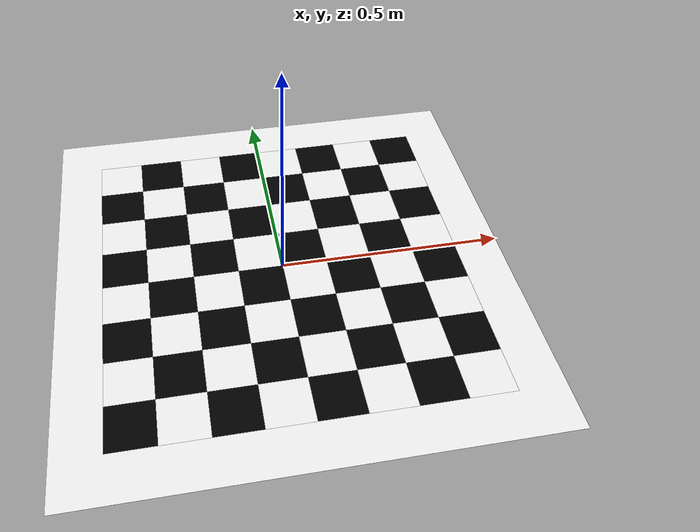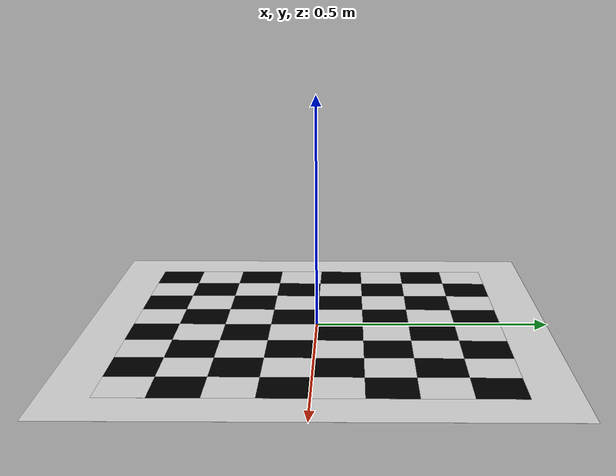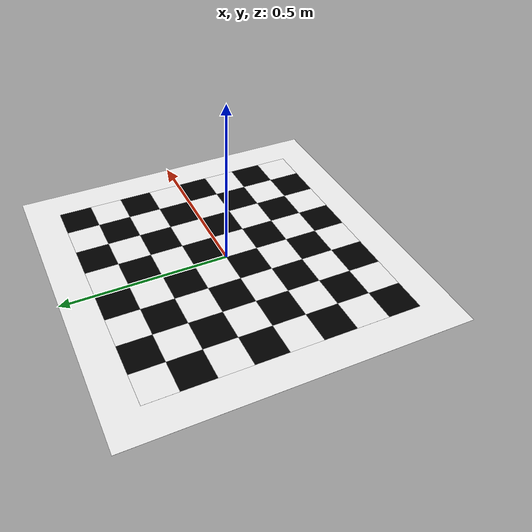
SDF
<?xml version="1.0"?>
<sdf version="1.4">
  <model name="checkerboard_8_8_0_1">
  <static>true</static>
  <link name="checkerboard_8_8_0_1_body">
  <collision name="board_collision">
    <pose>0 0 -0.005 0 0 0</pose>
    <geometry>
      <box>
        <size>1.0 1.0 0.01</size>
      </box>
    </geometry>
  </collision>
      <visual name="checker_0_0">
        <pose>-0.35000000000000003 -0.35000000000000003 0 0 0 0</pose>
        <geometry>
          <box>
            <size>0.1 0.1 0.0002</size>
          </box>
        </geometry>
        <material>
          <ambient>0 0 0 1</ambient>
          <diffuse>0 0 0 1</diffuse>
          <specular>0 0 0 1</specular>
          <emissive>0 0 0 1</emissive>
        </material>
      </visual>
      <visual name="checker_0_1">
        <pose>-0.35000000000000003 -0.25 0 0 0 0</pose>
        <geometry>
          <box>
            <size>0.1 0.1 0.0002</size>
          </box>
        </geometry>
        <material>
          <ambient>1 1 1 1</ambient>
          <diffuse>1 1 1 1</diffuse>
          <specular>1 1 1 1</specular>
          <emissive>1 1 1 1</emissive>
        </material>
      </visual>
      <visual name="checker_0_2">
        <pose>-0.35000000000000003 -0.15000000000000002 0 0 0 0</pose>
        <geometry>
          <box>
            <size>0.1 0.1 0.0002</size>
          </box>
        </geometry>
        <material>
          <ambient>0 0 0 1</ambient>
          <diffuse>0 0 0 1</diffuse>
          <specular>0 0 0 1</specular>
          <emissive>0 0 0 1</emissive>
        </material>
      </visual>
      <visual name="checker_0_3">
        <pose>-0.35000000000000003 -0.04999999999999999 0 0 0 0</pose>
        <geometry>
          <box>
            <size>0.1 0.1 0.0002</size>
          </box>
        </geometry>
        <material>
          <ambient>1 1 1 1</ambient>
          <diffuse>1 1 1 1</diffuse>
          <specular>1 1 1 1</specular>
          <emissive>1 1 1 1</emissive>
        </material>
      </visual>
      <visual name="checker_0_4">
        <pose>-0.35000000000000003 0.04999999999999999 0 0 0 0</pose>
        <geometry>
          <box>
            <size>0.1 0.1 0.0002</size>
          </box>
        </geometry>
        <material>
          <ambient>0 0 0 1</ambient>
          <diffuse>0 0 0 1</diffuse>
          <specular>0 0 0 1</specular>
          <emissive>0 0 0 1</emissive>
        </material>
      </visual>
      <visual name="checker_0_5">
        <pose>-0.35000000000000003 0.15000000000000002 0 0 0 0</pose>
        <geometry>
          <box>
            <size>0.1 0.1 0.0002</size>
          </box>
        </geometry>
        <material>
          <ambient>1 1 1 1</ambient>
          <diffuse>1 1 1 1</diffuse>
          <specular>1 1 1 1</specular>
          <emissive>1 1 1 1</emissive>
        </material>
      </visual>
      <visual name="checker_0_6">
        <pose>-0.35000000000000003 0.2500000000000001 0 0 0 0</pose>
        <geometry>
          <box>
            <size>0.1 0.1 0.0002</size>
          </box>
        </geometry>
        <material>
          <ambient>0 0 0 1</ambient>
          <diffuse>0 0 0 1</diffuse>
          <specular>0 0 0 1</specular>
          <emissive>0 0 0 1</emissive>
        </material>
      </visual>
      <visual name="checker_0_7">
        <pose>-0.35000000000000003 0.3500000000000001 0 0 0 0</pose>
        <geometry>
          <box>
            <size>0.1 0.1 0.0002</size>
          </box>
        </geometry>
        <material>
          <ambient>1 1 1 1</ambient>
          <diffuse>1 1 1 1</diffuse>
          <specular>1 1 1 1</specular>
          <emissive>1 1 1 1</emissive>
        </material>
      </visual>
      <visual name="checker_1_0">
        <pose>-0.25 -0.35000000000000003 0 0 0 0</pose>
        <geometry>
          <box>
            <size>0.1 0.1 0.0002</size>
          </box>
        </geometry>
        <material>
          <ambient>1 1 1 1</ambient>
          <diffuse>1 1 1 1</diffuse>
          <specular>1 1 1 1</specular>
          <emissive>1 1 1 1</emissive>
        </material>
      </visual>
      <visual name="checker_1_1">
        <pose>-0.25 -0.25 0 0 0 0</pose>
        <geometry>
          <box>
            <size>0.1 0.1 0.0002</size>
          </box>
        </geometry>
        <material>
          <ambient>0 0 0 1</ambient>
          <diffuse>0 0 0 1</diffuse>
          <specular>0 0 0 1</specular>
          <emissive>0 0 0 1</emissive>
        </material>
      </visual>
      <visual name="checker_1_2">
        <pose>-0.25 -0.15000000000000002 0 0 0 0</pose>
        <geometry>
          <box>
            <size>0.1 0.1 0.0002</size>
          </box>
        </geometry>
        <material>
          <ambient>1 1 1 1</ambient>
          <diffuse>1 1 1 1</diffuse>
          <specular>1 1 1 1</specular>
          <emissive>1 1 1 1</emissive>
        </material>
      </visual>
      <visual name="checker_1_3">
        <pose>-0.25 -0.04999999999999999 0 0 0 0</pose>
        <geometry>
          <box>
            <size>0.1 0.1 0.0002</size>
          </box>
        </geometry>
        <material>
          <ambient>0 0 0 1</ambient>
          <diffuse>0 0 0 1</diffuse>
          <specular>0 0 0 1</specular>
          <emissive>0 0 0 1</emissive>
        </material>
      </visual>
      <visual name="checker_1_4">
        <pose>-0.25 0.04999999999999999 0 0 0 0</pose>
        <geometry>
          <box>
            <size>0.1 0.1 0.0002</size>
          </box>
        </geometry>
        <material>
          <ambient>1 1 1 1</ambient>
          <diffuse>1 1 1 1</diffuse>
          <specular>1 1 1 1</specular>
          <emissive>1 1 1 1</emissive>
        </material>
      </visual>
      <visual name="checker_1_5">
        <pose>-0.25 0.15000000000000002 0 0 0 0</pose>
        <geometry>
          <box>
            <size>0.1 0.1 0.0002</size>
          </box>
        </geometry>
        <material>
          <ambient>0 0 0 1</ambient>
          <diffuse>0 0 0 1</diffuse>
          <specular>0 0 0 1</specular>
          <emissive>0 0 0 1</emissive>
        </material>
      </visual>
      <visual name="checker_1_6">
        <pose>-0.25 0.2500000000000001 0 0 0 0</pose>
        <geometry>
          <box>
            <size>0.1 0.1 0.0002</size>
          </box>
        </geometry>
        <material>
          <ambient>1 1 1 1</ambient>
          <diffuse>1 1 1 1</diffuse>
          <specular>1 1 1 1</specular>
          <emissive>1 1 1 1</emissive>
        </material>
      </visual>
      <visual name="checker_1_7">
        <pose>-0.25 0.3500000000000001 0 0 0 0</pose>
        <geometry>
          <box>
            <size>0.1 0.1 0.0002</size>
          </box>
        </geometry>
        <material>
          <ambient>0 0 0 1</ambient>
          <diffuse>0 0 0 1</diffuse>
          <specular>0 0 0 1</specular>
          <emissive>0 0 0 1</emissive>
        </material>
      </visual>
      <visual name="checker_2_0">
        <pose>-0.15000000000000002 -0.35000000000000003 0 0 0 0</pose>
        <geometry>
          <box>
            <size>0.1 0.1 0.0002</size>
          </box>
        </geometry>
        <material>
          <ambient>0 0 0 1</ambient>
          <diffuse>0 0 0 1</diffuse>
          <specular>0 0 0 1</specular>
          <emissive>0 0 0 1</emissive>
        </material>
      </visual>
      <visual name="checker_2_1">
        <pose>-0.15000000000000002 -0.25 0 0 0 0</pose>
        <geometry>
          <box>
            <size>0.1 0.1 0.0002</size>
          </box>
        </geometry>
        <material>
          <ambient>1 1 1 1</ambient>
          <diffuse>1 1 1 1</diffuse>
          <specular>1 1 1 1</specular>
          <emissive>1 1 1 1</emissive>
        </material>
      </visual>
      <visual name="checker_2_2">
        <pose>-0.15000000000000002 -0.15000000000000002 0 0 0 0</pose>
        <geometry>
          <box>
            <size>0.1 0.1 0.0002</size>
          </box>
        </geometry>
        <material>
          <ambient>0 0 0 1</ambient>
          <diffuse>0 0 0 1</diffuse>
          <specular>0 0 0 1</specular>
          <emissive>0 0 0 1</emissive>
        </material>
      </visual>
      <visual name="checker_2_3">
        <pose>-0.15000000000000002 -0.04999999999999999 0 0 0 0</pose>
        <geometry>
          <box>
            <size>0.1 0.1 0.0002</size>
          </box>
        </geometry>
        <material>
          <ambient>1 1 1 1</ambient>
          <diffuse>1 1 1 1</diffuse>
          <specular>1 1 1 1</specular>
          <emissive>1 1 1 1</emissive>
        </material>
      </visual>
      <visual name="checker_2_4">
        <pose>-0.15000000000000002 0.04999999999999999 0 0 0 0</pose>
        <geometry>
          <box>
            <size>0.1 0.1 0.0002</size>
          </box>
        </geometry>
        <material>
          <ambient>0 0 0 1</ambient>
          <diffuse>0 0 0 1</diffuse>
          <specular>0 0 0 1</specular>
          <emissive>0 0 0 1</emissive>
        </material>
      </visual>
      <visual name="checker_2_5">
        <pose>-0.15000000000000002 0.15000000000000002 0 0 0 0</pose>
        <geometry>
          <box>
            <size>0.1 0.1 0.0002</size>
          </box>
        </geometry>
        <material>
          <ambient>1 1 1 1</ambient>
          <diffuse>1 1 1 1</diffuse>
          <specular>1 1 1 1</specular>
          <emissive>1 1 1 1</emissive>
        </material>
      </visual>
      <visual name="checker_2_6">
        <pose>-0.15000000000000002 0.2500000000000001 0 0 0 0</pose>
        <geometry>
          <box>
            <size>0.1 0.1 0.0002</size>
          </box>
        </geometry>
        <material>
          <ambient>0 0 0 1</ambient>
          <diffuse>0 0 0 1</diffuse>
          <specular>0 0 0 1</specular>
          <emissive>0 0 0 1</emissive>
        </material>
      </visual>
      <visual name="checker_2_7">
        <pose>-0.15000000000000002 0.3500000000000001 0 0 0 0</pose>
        <geometry>
          <box>
            <size>0.1 0.1 0.0002</size>
          </box>
        </geometry>
        <material>
          <ambient>1 1 1 1</ambient>
          <diffuse>1 1 1 1</diffuse>
          <specular>1 1 1 1</specular>
          <emissive>1 1 1 1</emissive>
        </material>
      </visual>
      <visual name="checker_3_0">
        <pose>-0.04999999999999999 -0.35000000000000003 0 0 0 0</pose>
        <geometry>
          <box>
            <size>0.1 0.1 0.0002</size>
          </box>
        </geometry>
        <material>
          <ambient>1 1 1 1</ambient>
          <diffuse>1 1 1 1</diffuse>
          <specular>1 1 1 1</specular>
          <emissive>1 1 1 1</emissive>
        </material>
      </visual>
      <visual name="checker_3_1">
        <pose>-0.04999999999999999 -0.25 0 0 0 0</pose>
        <geometry>
          <box>
            <size>0.1 0.1 0.0002</size>
          </box>
        </geometry>
        <material>
          <ambient>0 0 0 1</ambient>
          <diffuse>0 0 0 1</diffuse>
          <specular>0 0 0 1</specular>
          <emissive>0 0 0 1</emissive>
        </material>
      </visual>
      <visual name="checker_3_2">
        <pose>-0.04999999999999999 -0.15000000000000002 0 0 0 0</pose>
        <geometry>
          <box>
            <size>0.1 0.1 0.0002</size>
          </box>
        </geometry>
        <material>
          <ambient>1 1 1 1</ambient>
          <diffuse>1 1 1 1</diffuse>
          <specular>1 1 1 1</specular>
          <emissive>1 1 1 1</emissive>
        </material>
      </visual>
      <visual name="checker_3_3">
        <pose>-0.04999999999999999 -0.04999999999999999 0 0 0 0</pose>
        <geometry>
          <box>
            <size>0.1 0.1 0.0002</size>
          </box>
        </geometry>
        <material>
          <ambient>0 0 0 1</ambient>
          <diffuse>0 0 0 1</diffuse>
          <specular>0 0 0 1</specular>
          <emissive>0 0 0 1</emissive>
        </material>
      </visual>
      <visual name="checker_3_4">
        <pose>-0.04999999999999999 0.04999999999999999 0 0 0 0</pose>
        <geometry>
          <box>
            <size>0.1 0.1 0.0002</size>
          </box>
        </geometry>
        <material>
          <ambient>1 1 1 1</ambient>
          <diffuse>1 1 1 1</diffuse>
          <specular>1 1 1 1</specular>
          <emissive>1 1 1 1</emissive>
        </material>
      </visual>
      <visual name="checker_3_5">
        <pose>-0.04999999999999999 0.15000000000000002 0 0 0 0</pose>
        <geometry>
          <box>
            <size>0.1 0.1 0.0002</size>
          </box>
        </geometry>
        <material>
          <ambient>0 0 0 1</ambient>
          <diffuse>0 0 0 1</diffuse>
          <specular>0 0 0 1</specular>
          <emissive>0 0 0 1</emissive>
        </material>
      </visual>
      <visual name="checker_3_6">
        <pose>-0.04999999999999999 0.2500000000000001 0 0 0 0</pose>
        <geometry>
          <box>
            <size>0.1 0.1 0.0002</size>
          </box>
        </geometry>
        <material>
          <ambient>1 1 1 1</ambient>
          <diffuse>1 1 1 1</diffuse>
          <specular>1 1 1 1</specular>
          <emissive>1 1 1 1</emissive>
        </material>
      </visual>
      <visual name="checker_3_7">
        <pose>-0.04999999999999999 0.3500000000000001 0 0 0 0</pose>
        <geometry>
          <box>
            <size>0.1 0.1 0.0002</size>
          </box>
        </geometry>
        <material>
          <ambient>0 0 0 1</ambient>
          <diffuse>0 0 0 1</diffuse>
          <specular>0 0 0 1</specular>
          <emissive>0 0 0 1</emissive>
        </material>
      </visual>
      <visual name="checker_4_0">
        <pose>0.04999999999999999 -0.35000000000000003 0 0 0 0</pose>
        <geometry>
          <box>
            <size>0.1 0.1 0.0002</size>
          </box>
        </geometry>
        <material>
          <ambient>0 0 0 1</ambient>
          <diffuse>0 0 0 1</diffuse>
          <specular>0 0 0 1</specular>
          <emissive>0 0 0 1</emissive>
        </material>
      </visual>
      <visual name="checker_4_1">
        <pose>0.04999999999999999 -0.25 0 0 0 0</pose>
        <geometry>
          <box>
            <size>0.1 0.1 0.0002</size>
          </box>
        </geometry>
        <material>
          <ambient>1 1 1 1</ambient>
          <diffuse>1 1 1 1</diffuse>
          <specular>1 1 1 1</specular>
          <emissive>1 1 1 1</emissive>
        </material>
      </visual>
      <visual name="checker_4_2">
        <pose>0.04999999999999999 -0.15000000000000002 0 0 0 0</pose>
        <geometry>
          <box>
            <size>0.1 0.1 0.0002</size>
          </box>
        </geometry>
        <material>
          <ambient>0 0 0 1</ambient>
          <diffuse>0 0 0 1</diffuse>
          <specular>0 0 0 1</specular>
          <emissive>0 0 0 1</emissive>
        </material>
      </visual>
      <visual name="checker_4_3">
        <pose>0.04999999999999999 -0.04999999999999999 0 0 0 0</pose>
        <geometry>
          <box>
            <size>0.1 0.1 0.0002</size>
          </box>
        </geometry>
        <material>
          <ambient>1 1 1 1</ambient>
          <diffuse>1 1 1 1</diffuse>
          <specular>1 1 1 1</specular>
          <emissive>1 1 1 1</emissive>
        </material>
      </visual>
      <visual name="checker_4_4">
        <pose>0.04999999999999999 0.04999999999999999 0 0 0 0</pose>
        <geometry>
          <box>
            <size>0.1 0.1 0.0002</size>
          </box>
        </geometry>
        <material>
          <ambient>0 0 0 1</ambient>
          <diffuse>0 0 0 1</diffuse>
          <specular>0 0 0 1</specular>
          <emissive>0 0 0 1</emissive>
        </material>
      </visual>
      <visual name="checker_4_5">
        <pose>0.04999999999999999 0.15000000000000002 0 0 0 0</pose>
        <geometry>
          <box>
            <size>0.1 0.1 0.0002</size>
          </box>
        </geometry>
        <material>
          <ambient>1 1 1 1</ambient>
          <diffuse>1 1 1 1</diffuse>
          <specular>1 1 1 1</specular>
          <emissive>1 1 1 1</emissive>
        </material>
      </visual>
      <visual name="checker_4_6">
        <pose>0.04999999999999999 0.2500000000000001 0 0 0 0</pose>
        <geometry>
          <box>
            <size>0.1 0.1 0.0002</size>
          </box>
        </geometry>
        <material>
          <ambient>0 0 0 1</ambient>
          <diffuse>0 0 0 1</diffuse>
          <specular>0 0 0 1</specular>
          <emissive>0 0 0 1</emissive>
        </material>
      </visual>
      <visual name="checker_4_7">
        <pose>0.04999999999999999 0.3500000000000001 0 0 0 0</pose>
        <geometry>
          <box>
            <size>0.1 0.1 0.0002</size>
          </box>
        </geometry>
        <material>
          <ambient>1 1 1 1</ambient>
          <diffuse>1 1 1 1</diffuse>
          <specular>1 1 1 1</specular>
          <emissive>1 1 1 1</emissive>
        </material>
      </visual>
      <visual name="checker_5_0">
        <pose>0.15000000000000002 -0.35000000000000003 0 0 0 0</pose>
        <geometry>
          <box>
            <size>0.1 0.1 0.0002</size>
          </box>
        </geometry>
        <material>
          <ambient>1 1 1 1</ambient>
          <diffuse>1 1 1 1</diffuse>
          <specular>1 1 1 1</specular>
          <emissive>1 1 1 1</emissive>
        </material>
      </visual>
      <visual name="checker_5_1">
        <pose>0.15000000000000002 -0.25 0 0 0 0</pose>
        <geometry>
          <box>
            <size>0.1 0.1 0.0002</size>
          </box>
        </geometry>
        <material>
          <ambient>0 0 0 1</ambient>
          <diffuse>0 0 0 1</diffuse>
          <specular>0 0 0 1</specular>
          <emissive>0 0 0 1</emissive>
        </material>
      </visual>
      <visual name="checker_5_2">
        <pose>0.15000000000000002 -0.15000000000000002 0 0 0 0</pose>
        <geometry>
          <box>
            <size>0.1 0.1 0.0002</size>
          </box>
        </geometry>
        <material>
          <ambient>1 1 1 1</ambient>
          <diffuse>1 1 1 1</diffuse>
          <specular>1 1 1 1</specular>
          <emissive>1 1 1 1</emissive>
        </material>
      </visual>
      <visual name="checker_5_3">
        <pose>0.15000000000000002 -0.04999999999999999 0 0 0 0</pose>
        <geometry>
          <box>
            <size>0.1 0.1 0.0002</size>
          </box>
        </geometry>
        <material>
          <ambient>0 0 0 1</ambient>
          <diffuse>0 0 0 1</diffuse>
          <specular>0 0 0 1</specular>
          <emissive>0 0 0 1</emissive>
        </material>
      </visual>
      <visual name="checker_5_4">
        <pose>0.15000000000000002 0.04999999999999999 0 0 0 0</pose>
        <geometry>
          <box>
            <size>0.1 0.1 0.0002</size>
          </box>
        </geometry>
        <material>
          <ambient>1 1 1 1</ambient>
          <diffuse>1 1 1 1</diffuse>
          <specular>1 1 1 1</specular>
          <emissive>1 1 1 1</emissive>
        </material>
      </visual>
      <visual name="checker_5_5">
        <pose>0.15000000000000002 0.15000000000000002 0 0 0 0</pose>
        <geometry>
          <box>
            <size>0.1 0.1 0.0002</size>
          </box>
        </geometry>
        <material>
          <ambient>0 0 0 1</ambient>
          <diffuse>0 0 0 1</diffuse>
          <specular>0 0 0 1</specular>
          <emissive>0 0 0 1</emissive>
        </material>
      </visual>
      <visual name="checker_5_6">
        <pose>0.15000000000000002 0.2500000000000001 0 0 0 0</pose>
        <geometry>
          <box>
            <size>0.1 0.1 0.0002</size>
          </box>
        </geometry>
        <material>
          <ambient>1 1 1 1</ambient>
          <diffuse>1 1 1 1</diffuse>
          <specular>1 1 1 1</specular>
          <emissive>1 1 1 1</emissive>
        </material>
      </visual>
      <visual name="checker_5_7">
        <pose>0.15000000000000002 0.3500000000000001 0 0 0 0</pose>
        <geometry>
          <box>
            <size>0.1 0.1 0.0002</size>
          </box>
        </geometry>
        <material>
          <ambient>0 0 0 1</ambient>
          <diffuse>0 0 0 1</diffuse>
          <specular>0 0 0 1</specular>
          <emissive>0 0 0 1</emissive>
        </material>
      </visual>
      <visual name="checker_6_0">
        <pose>0.2500000000000001 -0.35000000000000003 0 0 0 0</pose>
        <geometry>
          <box>
            <size>0.1 0.1 0.0002</size>
          </box>
        </geometry>
        <material>
          <ambient>0 0 0 1</ambient>
          <diffuse>0 0 0 1</diffuse>
          <specular>0 0 0 1</specular>
          <emissive>0 0 0 1</emissive>
        </material>
      </visual>
      <visual name="checker_6_1">
        <pose>0.2500000000000001 -0.25 0 0 0 0</pose>
        <geometry>
          <box>
            <size>0.1 0.1 0.0002</size>
          </box>
        </geometry>
        <material>
          <ambient>1 1 1 1</ambient>
          <diffuse>1 1 1 1</diffuse>
          <specular>1 1 1 1</specular>
          <emissive>1 1 1 1</emissive>
        </material>
      </visual>
      <visual name="checker_6_2">
        <pose>0.2500000000000001 -0.15000000000000002 0 0 0 0</pose>
        <geometry>
          <box>
            <size>0.1 0.1 0.0002</size>
          </box>
        </geometry>
        <material>
          <ambient>0 0 0 1</ambient>
          <diffuse>0 0 0 1</diffuse>
          <specular>0 0 0 1</specular>
          <emissive>0 0 0 1</emissive>
        </material>
      </visual>
      <visual name="checker_6_3">
        <pose>0.2500000000000001 -0.04999999999999999 0 0 0 0</pose>
        <geometry>
          <box>
            <size>0.1 0.1 0.0002</size>
          </box>
        </geometry>
        <material>
          <ambient>1 1 1 1</ambient>
          <diffuse>1 1 1 1</diffuse>
          <specular>1 1 1 1</specular>
          <emissive>1 1 1 1</emissive>
        </material>
      </visual>
      <visual name="checker_6_4">
        <pose>0.2500000000000001 0.04999999999999999 0 0 0 0</pose>
        <geometry>
          <box>
            <size>0.1 0.1 0.0002</size>
          </box>
        </geometry>
        <material>
          <ambient>0 0 0 1</ambient>
          <diffuse>0 0 0 1</diffuse>
          <specular>0 0 0 1</specular>
          <emissive>0 0 0 1</emissive>
        </material>
      </visual>
      <visual name="checker_6_5">
        <pose>0.2500000000000001 0.15000000000000002 0 0 0 0</pose>
        <geometry>
          <box>
            <size>0.1 0.1 0.0002</size>
          </box>
        </geometry>
        <material>
          <ambient>1 1 1 1</ambient>
          <diffuse>1 1 1 1</diffuse>
          <specular>1 1 1 1</specular>
          <emissive>1 1 1 1</emissive>
        </material>
      </visual>
      <visual name="checker_6_6">
        <pose>0.2500000000000001 0.2500000000000001 0 0 0 0</pose>
        <geometry>
          <box>
            <size>0.1 0.1 0.0002</size>
          </box>
        </geometry>
        <material>
          <ambient>0 0 0 1</ambient>
          <diffuse>0 0 0 1</diffuse>
          <specular>0 0 0 1</specular>
          <emissive>0 0 0 1</emissive>
        </material>
      </visual>
      <visual name="checker_6_7">
        <pose>0.2500000000000001 0.3500000000000001 0 0 0 0</pose>
        <geometry>
          <box>
            <size>0.1 0.1 0.0002</size>
          </box>
        </geometry>
        <material>
          <ambient>1 1 1 1</ambient>
          <diffuse>1 1 1 1</diffuse>
          <specular>1 1 1 1</specular>
          <emissive>1 1 1 1</emissive>
        </material>
      </visual>
      <visual name="checker_7_0">
        <pose>0.3500000000000001 -0.35000000000000003 0 0 0 0</pose>
        <geometry>
          <box>
            <size>0.1 0.1 0.0002</size>
          </box>
        </geometry>
        <material>
          <ambient>1 1 1 1</ambient>
          <diffuse>1 1 1 1</diffuse>
          <specular>1 1 1 1</specular>
          <emissive>1 1 1 1</emissive>
        </material>
      </visual>
      <visual name="checker_7_1">
        <pose>0.3500000000000001 -0.25 0 0 0 0</pose>
        <geometry>
          <box>
            <size>0.1 0.1 0.0002</size>
          </box>
        </geometry>
        <material>
          <ambient>0 0 0 1</ambient>
          <diffuse>0 0 0 1</diffuse>
          <specular>0 0 0 1</specular>
          <emissive>0 0 0 1</emissive>
        </material>
      </visual>
      <visual name="checker_7_2">
        <pose>0.3500000000000001 -0.15000000000000002 0 0 0 0</pose>
        <geometry>
          <box>
            <size>0.1 0.1 0.0002</size>
          </box>
        </geometry>
        <material>
          <ambient>1 1 1 1</ambient>
          <diffuse>1 1 1 1</diffuse>
          <specular>1 1 1 1</specular>
          <emissive>1 1 1 1</emissive>
        </material>
      </visual>
      <visual name="checker_7_3">
        <pose>0.3500000000000001 -0.04999999999999999 0 0 0 0</pose>
        <geometry>
          <box>
            <size>0.1 0.1 0.0002</size>
          </box>
        </geometry>
        <material>
          <ambient>0 0 0 1</ambient>
          <diffuse>0 0 0 1</diffuse>
          <specular>0 0 0 1</specular>
          <emissive>0 0 0 1</emissive>
        </material>
      </visual>
      <visual name="checker_7_4">
        <pose>0.3500000000000001 0.04999999999999999 0 0 0 0</pose>
        <geometry>
          <box>
            <size>0.1 0.1 0.0002</size>
          </box>
        </geometry>
        <material>
          <ambient>1 1 1 1</ambient>
          <diffuse>1 1 1 1</diffuse>
          <specular>1 1 1 1</specular>
          <emissive>1 1 1 1</emissive>
        </material>
      </visual>
      <visual name="checker_7_5">
        <pose>0.3500000000000001 0.15000000000000002 0 0 0 0</pose>
        <geometry>
          <box>
            <size>0.1 0.1 0.0002</size>
          </box>
        </geometry>
        <material>
          <ambient>0 0 0 1</ambient>
          <diffuse>0 0 0 1</diffuse>
          <specular>0 0 0 1</specular>
          <emissive>0 0 0 1</emissive>
        </material>
      </visual>
      <visual name="checker_7_6">
        <pose>0.3500000000000001 0.2500000000000001 0 0 0 0</pose>
        <geometry>
          <box>
            <size>0.1 0.1 0.0002</size>
          </box>
        </geometry>
        <material>
          <ambient>1 1 1 1</ambient>
          <diffuse>1 1 1 1</diffuse>
          <specular>1 1 1 1</specular>
          <emissive>1 1 1 1</emissive>
        </material>
      </visual>
      <visual name="checker_7_7">
        <pose>0.3500000000000001 0.3500000000000001 0 0 0 0</pose>
        <geometry>
          <box>
            <size>0.1 0.1 0.0002</size>
          </box>
        </geometry>
        <material>
          <ambient>0 0 0 1</ambient>
          <diffuse>0 0 0 1</diffuse>
          <specular>0 0 0 1</specular>
          <emissive>0 0 0 1</emissive>
        </material>
      </visual>
      <visual name="checker_backdrop">
        <pose>0 0 0 0 0 0</pose>
        <geometry>
          <box>
            <size>1.0 1.0 0.0001</size>
          </box>
        </geometry>
        <material>
          <ambient>1 1 1 1</ambient>
          <diffuse>1 1 1 1</diffuse>
          <specular>1 1 1 1</specular>
          <emissive>1 1 1 1</emissive>
        </material>
      </visual>
    </link>
  </model>
</sdf>
